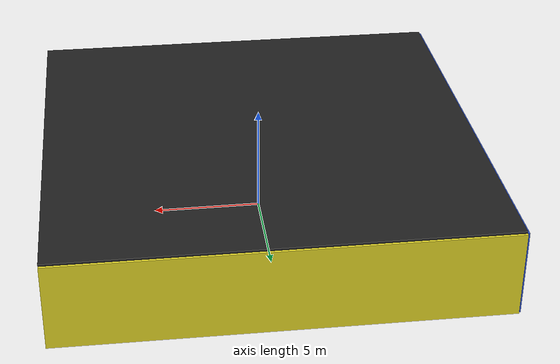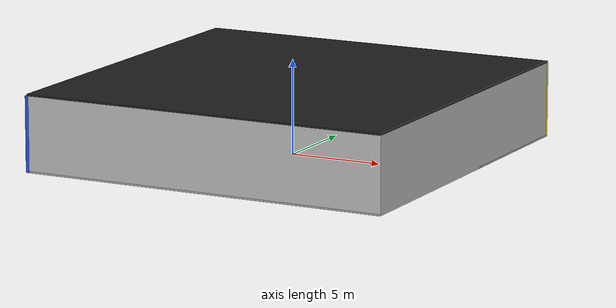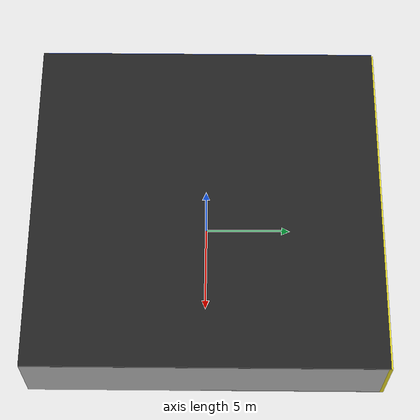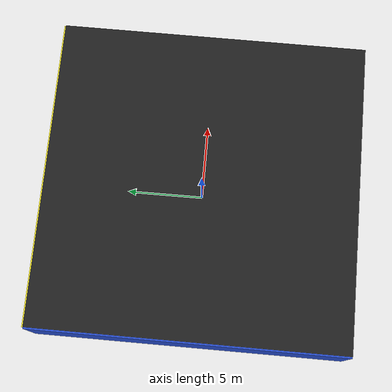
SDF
<sdf version="1.4">
 <world name="default">
  <physics type="ode">
   <max_step_size>0.001</max_step_size>
   <real_time_factor>1</real_time_factor>
   <real_time_update_rate>1000</real_time_update_rate>
   <gravity>0 0 -9.8</gravity>
  </physics>
  <scene><ambient>0.4 0.4 0.4 1</ambient><background>0.7 0.7 0.7 1</background><shadows>1</shadows></scene>
  <model name="Surrounding">
   <static>1</static>
   <link name="Ceiling">
    <collision name="Ceiling_Collision"><geometry><box><size>20 20 0.1</size></box></geometry></collision>
    <visual name="Ceiling_Visual">
     <geometry><box><size>20 20 0.1</size></box></geometry>
     <material>
      <script><uri>file://media/materials/scripts/gazebo.material</uri><name>Gazebo/Black</name></script>
     </material>
    </visual>
    <pose>0 0 4.05 0 0 0</pose>
   </link>
   <link name="Wall_South">
    <collision name="Wall_South_Collision">
     <geometry><box><size>20 0 4</size></box></geometry>
     <pose>0 0 2 0 -0 0</pose>
    </collision>
    <visual name="Wall_South_Visual">
     <pose>0 0 2 0 -0 0</pose>
     <geometry><box><size>20 0 4</size></box></geometry>
     <material>
      <script><uri>file://media/materials/scripts/gazebo.material</uri><name>Gazebo/LightOn</name></script>
     </material>
    </visual>
    <velocity_decay><linear>0</linear><angular>0</angular></velocity_decay>
    <pose>0 -10 0 0 -0 0</pose>
   </link>
   <link name="Wall_East">
    <collision name="Wall_21_Collision">
     <geometry><box><size>20 0 4</size></box></geometry>
     <pose>0 0 2 0 -0 0</pose>
    </collision>
    <visual name="Wall_21_Visual">
     <pose>0 0 2 0 -0 0</pose>
     <geometry><box><size>20 0 4</size></box></geometry>
     <material>
      <script><uri>file://media/materials/scripts/gazebo.material</uri><name>Gazebo/JointAnchor</name></script>
     </material>
    </visual>
    <velocity_decay><linear>0</linear><angular>0</angular></velocity_decay>
    <pose>10 0 0 0 -0 1.5708</pose>
   </link>
   <link name="Wall_North">
    <collision name="Wall_22_Collision">
     <geometry><box><size>20 0.2 4</size></box></geometry>
     <pose>0 0 2 0 -0 0</pose>
    </collision>
    <visual name="Wall_22_Visual">
     <pose>0 0 2 0 -0 0</pose>
     <geometry><box><size>20 0.2 4</size></box></geometry>
     <material>
      <script><uri>file://media/materials/scripts/gazebo.material</uri><name>Gazebo/Yellow</name></script>
     </material>
    </visual>
    <velocity_decay><linear>0</linear><angular>0</angular></velocity_decay>
    <pose>0 10 0 0 -0 0</pose>
   </link>
   <link name="Wall_West">
    <collision name="Wall_23_Collision">
     <geometry><box><size>20 0.2 4</size></box></geometry>
     <pose>0 0 2 0 -0 0</pose>
    </collision>
    <visual name="Wall_23_Visual">
     <pose>0 0 2 0 -0 0</pose>
     <geometry><box><size>20 0.2 4</size></box></geometry>
     <material>
      <script><uri>file://media/materials/scripts/gazebo.material</uri><name>Gazebo/Blue</name></script>
     </material>
    </visual>
    <velocity_decay><linear>0</linear><angular>0</angular></velocity_decay>
    <pose>-10 0 0 0 0 -1.5708</pose>
   </link>
   <link name="Ground_link">
    <collision name="collision">
     <pose>0 0 .05 0 -0 0</pose>
     <geometry><box><size>20 20 0.1</size></box></geometry>
    </collision>
    <visual name="visual">
     <pose>0 0 .05 0 -0 0</pose>
     <geometry><box><size>20 20 0.1</size></box></geometry>
     <material>
      <script><uri>file://media/materials/scripts/gazebo.material</uri><name>Gazebo/GreyTransparent</name></script>
     </material>
    </visual>
   </link>
   <static>1</static>
  </model>
  <spherical_coordinates>
   <surface_model>EARTH_WGS84</surface_model>
   <latitude_deg>0</latitude_deg>
   <longitude_deg>0</longitude_deg>
   <elevation>0</elevation>
   <heading_deg>0</heading_deg>
  </spherical_coordinates>
  <light name="lightball_0" type="diffuse">
   <diffuse>0.8 0.8 0.8 1</diffuse>
   <specular>0.2 0.2 0.2 1</specular>
   <attenuation>
    <range>100</range>
    <constant>0.7</constant>
    <linear>0.01</linear>
    <quadratic>0.001</quadratic>
   </attenuation>
   <direction>-0.5 0.1 -0.9</direction>
   <pose>-3.5084833195 -6.5161466005 0.659445589153 0 0 0</pose>
  </light>
  <light name="lightball_1" type="diffuse">
   <diffuse>0.8 0.8 0.8 1</diffuse>
   <specular>0.2 0.2 0.2 1</specular>
   <attenuation>
    <range>100</range>
    <constant>0.7</constant>
    <linear>0.01</linear>
    <quadratic>0.001</quadratic>
   </attenuation>
   <direction>-0.5 0.1 -0.9</direction>
   <pose>-6.01000415361 6.44680782307 0.546942310478 0 0 0</pose>
  </light>
  <include>
   <uri>model://construction_cone</uri>
   <pose>-6.78048987672 -1.52825328247 0 0 0 2.24427759522</pose>
  </include>
  <include><uri>model://cabinet</uri><pose>-7.96809774604 1.92288909887 0 0 0 3.11799289224</pose></include>
  <include>
   <uri>model://construction_cone</uri>
   <pose>-0.780857425601 -4.35094527375 0 0 0 2.82243079746</pose>
  </include>
  <include><uri>model://table</uri><pose>-1.80375246902 2.1736677925 0 0 0 2.73826888038</pose></include>
  <include><uri>model://table</uri><pose>1.34214594422 -3.99892909833 0 0 0 1.2950157198</pose></include>
  <include>
   <uri>model://construction_cone</uri>
   <pose>4.30337548928 -0.783688289733 0 0 0 2.95880750914</pose>
  </include>
  <include>
   <uri>model://construction_cone</uri>
   <pose>6.98129422147 -6.86427227402 0 0 0 2.93066650218</pose>
  </include>
  <include><uri>model://cabinet</uri><pose>8.0483373579 -4.00268590717 0 0 0 1.98603930016</pose></include>
 </world>
</sdf>

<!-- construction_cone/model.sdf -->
<sdf version="1.5">
  <model name="Construction Cone">
    <link name="link">
      <collision name="collision">
        <geometry>
          <mesh>
            <scale>10 10 10</scale>
            <uri>file://isr-testbed/construction_cone/meshes/construction_cone.dae</uri>
          </mesh>
        </geometry>
      </collision>
      <visual name="visual">
        <geometry>
          <mesh>
            <scale>10 10 10</scale>
            <uri>file://isr-testbed/construction_cone/meshes/construction_cone.dae</uri>
          </mesh>
        </geometry>
      </visual>
    </link>
  </model>
</sdf>

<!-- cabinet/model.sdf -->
<sdf version="1.5">
  <model name="cabinet">
    <static>true</static>
    <link name="cabinet_bottom_plate">
      <inertial>
        <pose>0 0 -1 0 0 0</pose>
        <inertia>
          <ixx>2.050000</ixx>
          <ixy>0</ixy>
          <ixz>0</ixz>
          <iyy>2.050000</iyy>
          <iyz>0</iyz>
          <izz>2.050000</izz>
        </inertia>
        <mass>25.000000</mass>
      </inertial>
      <collision name="cabinet_bottom_plate_geom">
        <pose>0 0 0.010000 0 0 0</pose>
        <geometry>
          <box>
            <size>0.450000 0.450000 0.020000</size>
          </box>
        </geometry>
      </collision>
      <visual name="cabinet_bottom_plate_geom_visual">
        <pose>0 0 0.010000 0 0 0</pose>
        <geometry>
          <box>
            <size>0.450000 0.450000 0.020000</size>
          </box>
        </geometry>
        <material>
          <script>
            <uri>model://media/materials/scripts/gazebo.material</uri>
            <name>Gazebo/Wood</name>
          </script>
        </material>
      </visual>
      <collision name="cabinet_bottom_plate_geom_cabinet_back_plate">
        <pose>0.235000 0 0.510000 0 0 0</pose>
        <geometry>
          <box>
            <size>0.020000 0.450000 1.020000</size>
          </box>
        </geometry>
      </collision>
      <visual name="cabinet_bottom_plate_geom_cabinet_back_plate_visual">
        <pose>0.235000 0 0.510000 0 0 0</pose>
        <geometry>
          <box>
            <size>0.020000 0.450000 1.020000</size>
          </box>
        </geometry>
        <material>
          <script>
            <uri>model://media/materials/scripts/gazebo.material</uri>
            <name>Gazebo/Wood</name>
          </script>
        </material>
      </visual>
      <collision name="cabinet_bottom_plate_geom_cabinet_left_plate">
        <pose>0 0.235000 0.510000 0 0 0</pose>
        <geometry>
          <box>
            <size>0.450000 0.020000 1.020000</size>
          </box>
        </geometry>
      </collision>
      <visual name="cabinet_bottom_plate_geom_cabinet_left_plate_visual">
        <pose>0 0.235000 0.510000 0 0 0</pose>
        <geometry>
          <box>
            <size>0.450000 0.020000 1.020000</size>
          </box>
        </geometry>
        <material>
          <script>
            <uri>model://media/materials/scripts/gazebo.material</uri>
            <name>Gazebo/Wood</name>
          </script>
        </material>
      </visual>
      <collision name="cabinet_bottom_plate_geom_cabinet_middle_plate">
        <pose>0 0 0.510000 0 0 0</pose>
        <geometry>
          <box>
            <size>0.450000 0.450000 0.020000</size>
          </box>
        </geometry>
      </collision>
      <visual name="cabinet_bottom_plate_geom_cabinet_middle_plate_visual">
        <pose>0 0 0.510000 0 0 0</pose>
        <geometry>
          <box>
            <size>0.450000 0.450000 0.020000</size>
          </box>
        </geometry>
        <material>
          <script>
            <uri>model://media/materials/scripts/gazebo.material</uri>
            <name>Gazebo/Wood</name>
          </script>
        </material>
      </visual>
      <collision name="cabinet_bottom_plate_geom_cabinet_right_plate">
        <pose>0 -0.235000 0.510000 0 0 0</pose>
        <geometry>
          <box>
            <size>0.450000 0.020000 1.020000</size>
          </box>
        </geometry>
      </collision>
      <visual name="cabinet_bottom_plate_geom_cabinet_right_plate_visual">
        <pose>0 -0.235000 0.510000 0 0 0</pose>
        <geometry>
          <box>
            <size>0.450000 0.020000 1.020000</size>
          </box>
        </geometry>
        <material>
          <script>
            <uri>model://media/materials/scripts/gazebo.material</uri>
            <name>Gazebo/Wood</name>
          </script>
        </material>
      </visual>
      <collision name="cabinet_bottom_plate_geom_cabinet_top_plate">
        <pose>0 0 1.010000 0 0 0</pose>
        <geometry>
          <box>
            <size>0.450000 0.450000 0.020000</size>
          </box>
        </geometry>
      </collision>
      <visual name="cabinet_bottom_plate_geom_cabinet_top_plate_visual">
        <pose>0 0 1.010000 0 0 0</pose>
        <geometry>
          <box>
            <size>0.450000 0.450000 0.020000</size>
          </box>
        </geometry>
        <material>
          <script>
            <uri>model://media/materials/scripts/gazebo.material</uri>
            <name>Gazebo/Wood</name>
          </script>
        </material>
      </visual>
    </link>
  </model>
</sdf>

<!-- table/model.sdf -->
<sdf version="1.5">
  <model name="table">
    <static>true</static>
    <link name="link">
      <collision name="surface">
        <pose>0 0 1.0 0 0 0</pose>
        <geometry>
          <box>
            <size>1.5 0.8 0.03</size>
          </box>
        </geometry>
        <surface>
          <friction>
            <ode>
              <mu>0.6</mu>
              <mu2>0.6</mu2>
            </ode>
          </friction>
        </surface>
      </collision>
      <visual name="visual1">
        <pose>0 0 1.0 0 0 0</pose>
        <geometry>
          <box>
            <size>1.5 0.8 0.03</size>
          </box>
        </geometry>
        <material>
          <script>
            <uri>model://media/materials/scripts/gazebo.material</uri>
            <name>Gazebo/Wood</name>
          </script>
        </material>
      </visual>
      <collision name="front_left_leg">
        <pose>0.68 0.38 0.5 0 0 0</pose>
        <geometry>
          <cylinder>
            <radius>0.02</radius>
            <length>1.0</length>
          </cylinder>
        </geometry>
      </collision>
      <visual name="front_left_leg">
        <pose>0.68 0.38 0.5 0 0 0</pose>
        <geometry>
          <cylinder>
            <radius>0.02</radius>
            <length>1.0</length>
          </cylinder>
        </geometry>
        <material>
          <script>
            <uri>model://media/materials/scripts/gazebo.material</uri>
            <name>Gazebo/Grey</name>
          </script>
        </material>
      </visual>
      <collision name="front_right_leg">
        <pose>0.68 -0.38 0.5 0 0 0</pose>
        <geometry>
          <cylinder>
            <radius>0.02</radius>
            <length>1.0</length>
          </cylinder>
        </geometry>
      </collision>
      <visual name="front_right_leg">
        <pose>0.68 -0.38 0.5 0 0 0</pose>
        <geometry>
          <cylinder>
            <radius>0.02</radius>
            <length>1.0</length>
          </cylinder>
        </geometry>
        <material>
          <script>
            <uri>model://media/materials/scripts/gazebo.material</uri>
            <name>Gazebo/Grey</name>
          </script>
        </material>
      </visual>
      <collision name="back_right_leg">
        <pose>-0.68 -0.38 0.5 0 0 0</pose>
        <geometry>
          <cylinder>
            <radius>0.02</radius>
            <length>1.0</length>
          </cylinder>
        </geometry>
      </collision>
      <visual name="back_right_leg">
        <pose>-0.68 -0.38 0.5 0 0 0</pose>
        <geometry>
          <cylinder>
            <radius>0.02</radius>
            <length>1.0</length>
          </cylinder>
        </geometry>
        <material>
          <script>
            <uri>model://media/materials/scripts/gazebo.material</uri>
            <name>Gazebo/Grey</name>
          </script>
        </material>
      </visual>
      <collision name="back_left_leg">
        <pose>-0.68 0.38 0.5 0 0 0</pose>
        <geometry>
          <cylinder>
            <radius>0.02</radius>
            <length>1.0</length>
          </cylinder>
        </geometry>
      </collision>
      <visual name="back_left_leg">
        <pose>-0.68 0.38 0.5 0 0 0</pose>
        <geometry>
          <cylinder>
            <radius>0.02</radius>
            <length>1.0</length>
          </cylinder>
        </geometry>
        <material>
          <script>
            <uri>model://media/materials/scripts/gazebo.material</uri>
            <name>Gazebo/Grey</name>
          </script>
        </material>
      </visual>
    </link>
  </model>
</sdf>
